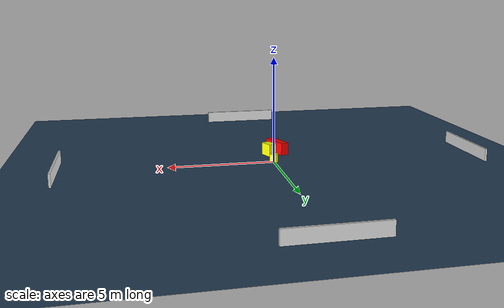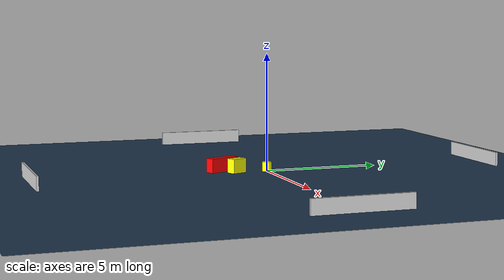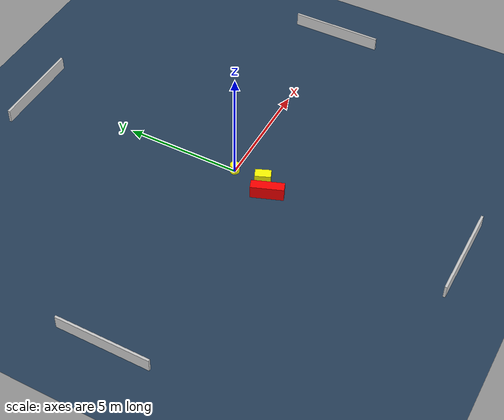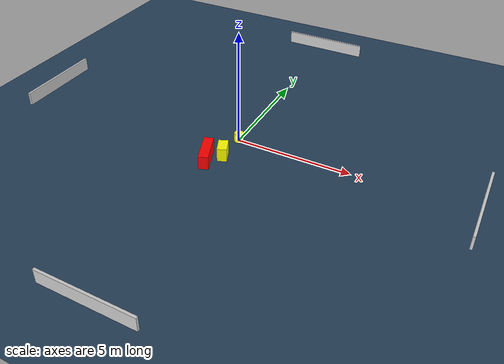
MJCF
<?xml version="1.0" ?>
<mujoco model="generated_environment">
  <option timestep="0.01" integrator="RK4" cone="elliptic"/>
  <default>
    <geom density="1"/>
  </default>
  <asset>
    <texture builtin="gradient" height="3072" name="skybox" rgb1="0.3 0.5 0.7" rgb2="0 0 0" type="skybox" width="512"/>
    <texture builtin="checker" height="300" name="groundplane" rgb1="0.2 0.3 0.4" rgb2="0.1 0.2 0.3" type="2d" width="300"/>
    <material name="groundplane" reflectance="0.2" texrepeat="5 5" texture="groundplane"/>
  </asset>
  <worldbody>
    <light dir="0 0 -1" directional="true" pos="0 0 1.5"/>
    <geom condim="3" friction="0.5 0.005 0.001" material="groundplane" name="floor" pos="0 0 0" size="0 0 0.05" type="plane"/>
    <body name="walls">
      <geom name="wall_1" condim="4" pos="-10.0 0.0 0.3" rgba="0.800000011920929 0.800000011920929 0.800000011920929 1.0" size="0.05 2.0 0.3" type="box"/>
      <geom name="wall_2" condim="4" pos="10.0 0.0 0.3" rgba="0.800000011920929 0.800000011920929 0.800000011920929 1.0" size="0.05 2.0 0.3" type="box"/>
      <geom name="wall_3" condim="4" pos="0.0 -10.0 0.3" rgba="0.800000011920929 0.800000011920929 0.800000011920929 1.0" size="2.0 0.05 0.3" type="box"/>
      <geom name="wall_4" condim="4" pos="0.0 10.0 0.3" rgba="0.800000011920929 0.800000011920929 0.800000011920929 1.0" size="2.0 0.05 0.3" type="box"/>
    </body>
    <body name="robot">
      <joint name="joint_x" type="slide" pos="0 0 0" axis="1 0 0"/>
      <joint name="joint_y" type="slide" pos="0 0 0" axis="0 1 0"/>
      <geom name="robot" type="cylinder" pos="0.0 0.0 0.2" size="0.2 0.2 0.0" mass="5.0" friction="1.0 0.005 0.0001" condim="4" rgba="1.0 1.0 0.0 1.0"/>
    </body>
    <body name="obstacle_1_movable">
      <geom name="obstacle_1_movable" condim="4" pos="-0.04358144976856189 -1.333929605872712 0.3" euler="0 0 112.62682854658453" friction="0.0 0.005 0.001" rgba="1.0 1.0 0.0 1.0" size="0.3352147689581977 0.20382152484104243 0.3" type="box" mass="0.1"/>
      <joint type="free"/>
    </body>
    <body name="obstacle_2_static">
      <geom name="obstacle_2_static" condim="4" pos="-0.5583559497585655 -1.8036609190759303 0.3" euler="0 0 200.58004032345738" friction="0.0 0.005 0.001" rgba="1.0 0.0 0.0 1.0" size="0.20584847666660108 0.6967089326962113 0.3" type="box"/>
    </body>
  </worldbody>
  <actuator>
    <motor name="actuator_x" joint="joint_x" gear="1" ctrlrange="-1 1"/>
    <motor name="actuator_y" joint="joint_y" gear="1" ctrlrange="-1 1"/>
  </actuator>
</mujoco>
